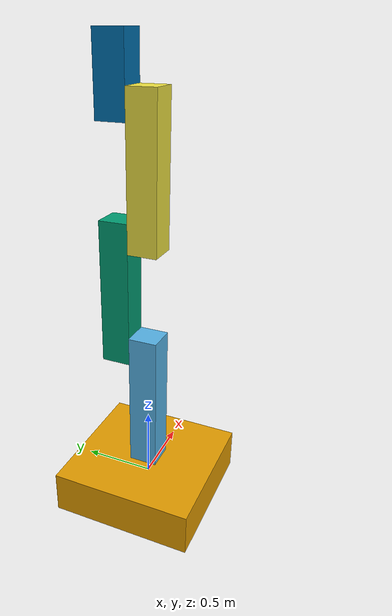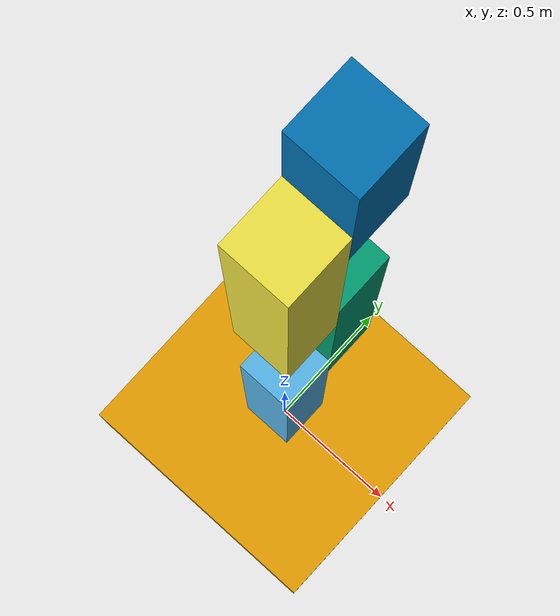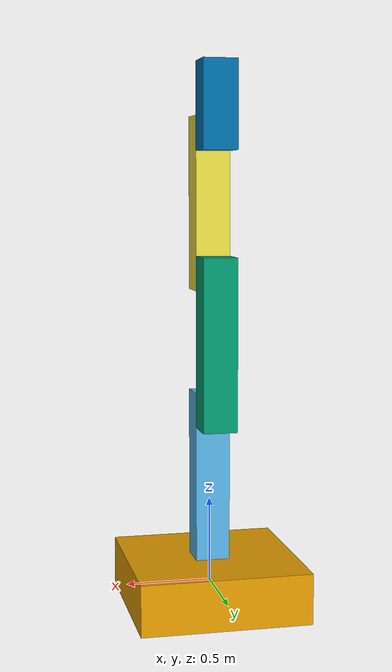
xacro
<?xml version="1.0"?>

<robot name="four_dof_arm" xmlns:xacro="http://www.ros.org/wiki/xacro">

    <xacro:property name="baseparam" value="1.0 1.0 0.3"/>
    <xacro:property name="linkparam" value="0.2 0.2 1.0"/>
    <xacro:property name="efparam" value="0.2 0.2 0.5"/>

    <xacro:macro name="build_link" params="name size xyz">
        <link name="${name}">
            <visual>
                <origin xyz="${xyz}" rpy="0 0 0"/>
                <geometry>
                    <box size="${size}"/>
                </geometry>
            </visual>
            <collision>
                <origin xyz="${xyz}" rpy="0 0 0"/>
                <geometry>
                    <box size="${size}"/>
                </geometry>
            </collision>
        </link>
    </xacro:macro>

    <xacro:macro name="c_joint" params="name type parent child xyz axis ll ul ef ve">
        <joint name="${name}" type="${type}">
            <parent link="${parent}"/>
            <child link="${child}"/>
            <origin xyz="${xyz}" rpy="0 0 0"/>
            <axis xyz="${axis}"/>
            <limit
			lower="${ll}"
			upper="${ul}"
			effort="${ef}"
			velocity="${ve}"/>
        </joint>
    </xacro:macro>

    <xacro:build_link
        name="base_link"
        size="${baseparam}"
        xyz="0 0 0"
    />

    <xacro:build_link
        name="link1"
        size="${linkparam}"
        xyz="0 0 0.5"
    />
    <xacro:c_joint
        name="joint1"
        type="revolute"
        parent="base_link"
        child="link1"
        xyz="0 0 0.15"
        axis="0 0 1"
        ll="-3.14159"
        ul="3.14159"
        ef="10"
        ve="1.0"
    />

    <xacro:build_link
        name="link2"
        size="${linkparam}"
        xyz="0 0.1 0.4"
    />
    <xacro:c_joint
        name="joint2"
        type="revolute"
        parent="link1"
        child="link2"
        xyz="0 0.1 0.9"
        axis="0 1 0"
        ll="-1.5708"
        ul="1.5708"
        ef="10"
        ve="1.0"
    />

    <xacro:build_link
        name="link3"
        size="${linkparam}"
        xyz="0 -0.1 0.4"
    />
    <xacro:c_joint
        name="joint3"
        type="revolute"
        parent="link2"
        child="link3"
        xyz="0 0 0.8"
        axis="0 1 0"
        ll="-1.5708"
        ul="1.5708"
        ef="10"
        ve="1.0"
    />

    <xacro:build_link
        name="link4"
        size="${efparam}"
        xyz="0 0.1 0.15"
    />
    <xacro:c_joint
        name="joint4"
        type="revolute"
        parent="link3"
        child="link4"
        xyz="0 0 0.8"
        axis="0 1 0"
        ll="-1.5708"
        ul="1.5708"
        ef="10"
        ve="1.0"
    />

</robot>
